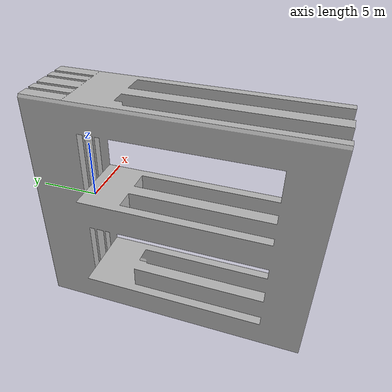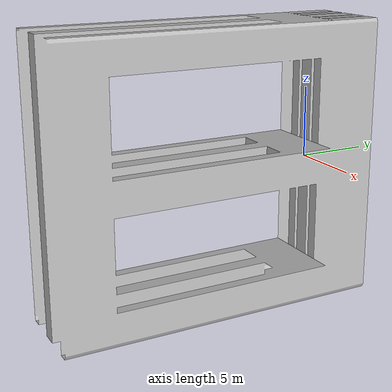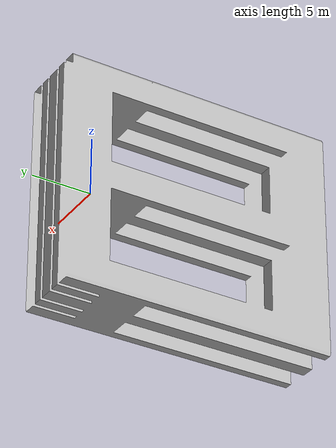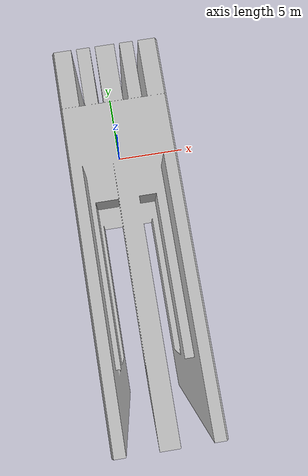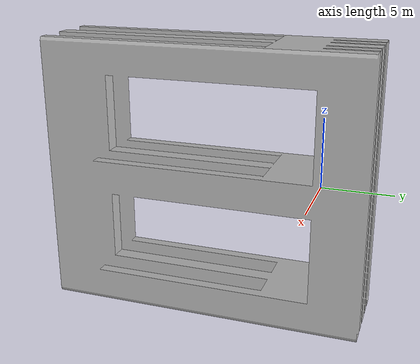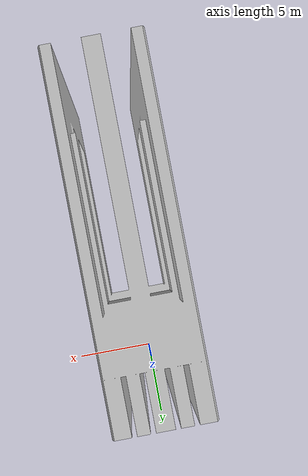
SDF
<?xml version="1.0" ?>
<sdf version="1.4">
	<model name="pallet145mm">
		<static>true</static>
		<link name="link">
			<pose>0 0 0.06 0 0 0</pose>
			<collision name="collision">
				<geometry>
					<mesh>
						<uri>model://pallet145mm/mesh/pallet.dae</uri>
						<scale>0.787 16 1.647</scale>
					</mesh>
				</geometry>

			</collision>
			<visual name="visual">
				<geometry>
					<mesh>
						<uri>model://pallet145mm/mesh/pallet.dae</uri>
						<scale>0.787 16 1.647</scale>
					</mesh>
				</geometry>
			</visual>
		</link>
	</model>
</sdf>
